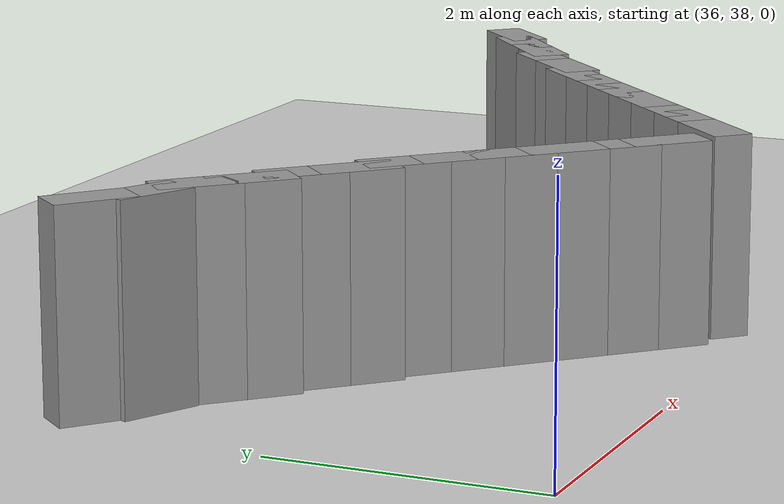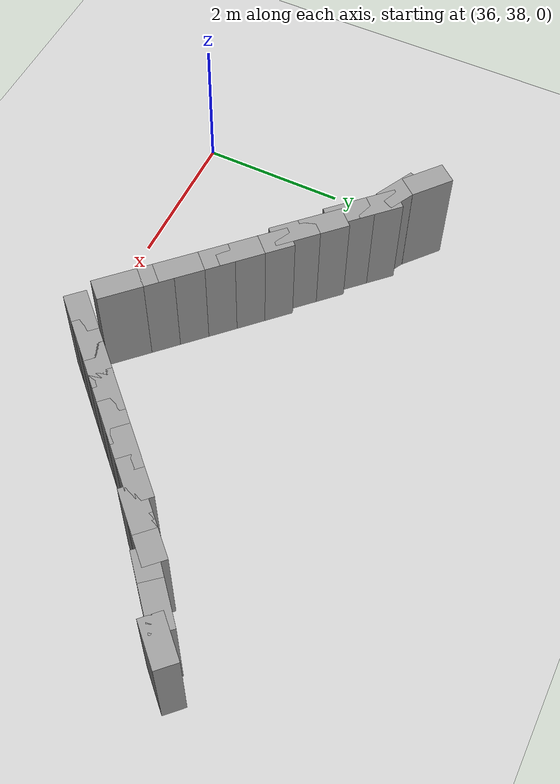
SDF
<sdf version="1.5">
 <world name="test_figure8">
  <include><uri>model://sun</uri></include>
  <include><uri>model://ground_plane</uri></include>
  <model name="curbL_372">
   <static>true</static>
   <pose>43.439 41.239 0.750 0 0 -2.356</pose>
   <link name="link">
    <collision name="collision"><geometry><box><size>0.600 0.300 1.500</size></box></geometry></collision>
    <visual name="visual">
     <geometry><box><size>0.600 0.300 1.500</size></box></geometry>
     <material><ambient>0.6 0.6 0.6 1</ambient><diffuse>0.6 0.6 0.6 1</diffuse></material>
    </visual>
   </link>
  </model>
  <model name="curbL_373">
   <static>true</static>
   <pose>43.114 41.041 0.750 0 0 -2.433</pose>
   <link name="link">
    <collision name="collision"><geometry><box><size>0.600 0.300 1.500</size></box></geometry></collision>
    <visual name="visual">
     <geometry><box><size>0.600 0.300 1.500</size></box></geometry>
     <material><ambient>0.6 0.6 0.6 1</ambient><diffuse>0.6 0.6 0.6 1</diffuse></material>
    </visual>
   </link>
  </model>
  <model name="curbL_374">
   <static>true</static>
   <pose>42.811 40.781 0.750 0 0 -2.433</pose>
   <link name="link">
    <collision name="collision"><geometry><box><size>0.600 0.300 1.500</size></box></geometry></collision>
    <visual name="visual">
     <geometry><box><size>0.600 0.300 1.500</size></box></geometry>
     <material><ambient>0.6 0.6 0.6 1</ambient><diffuse>0.6 0.6 0.6 1</diffuse></material>
    </visual>
   </link>
  </model>
  <model name="curbL_375">
   <static>true</static>
   <pose>42.484 40.584 0.750 0 0 -2.356</pose>
   <link name="link">
    <collision name="collision"><geometry><box><size>0.600 0.300 1.500</size></box></geometry></collision>
    <visual name="visual">
     <geometry><box><size>0.600 0.300 1.500</size></box></geometry>
     <material><ambient>0.6 0.6 0.6 1</ambient><diffuse>0.6 0.6 0.6 1</diffuse></material>
    </visual>
   </link>
  </model>
  <model name="curbL_376">
   <static>true</static>
   <pose>42.201 40.301 0.750 0 0 -2.356</pose>
   <link name="link">
    <collision name="collision"><geometry><box><size>0.600 0.300 1.500</size></box></geometry></collision>
    <visual name="visual">
     <geometry><box><size>0.600 0.300 1.500</size></box></geometry>
     <material><ambient>0.6 0.6 0.6 1</ambient><diffuse>0.6 0.6 0.6 1</diffuse></material>
    </visual>
   </link>
  </model>
  <model name="curbL_377">
   <static>true</static>
   <pose>41.889 40.089 0.750 0 0 -2.356</pose>
   <link name="link">
    <collision name="collision"><geometry><box><size>0.600 0.300 1.500</size></box></geometry></collision>
    <visual name="visual">
     <geometry><box><size>0.600 0.300 1.500</size></box></geometry>
     <material><ambient>0.6 0.6 0.6 1</ambient><diffuse>0.6 0.6 0.6 1</diffuse></material>
    </visual>
   </link>
  </model>
  <model name="curbL_378">
   <static>true</static>
   <pose>41.606 39.806 0.750 0 0 -2.356</pose>
   <link name="link">
    <collision name="collision"><geometry><box><size>0.600 0.300 1.500</size></box></geometry></collision>
    <visual name="visual">
     <geometry><box><size>0.600 0.300 1.500</size></box></geometry>
     <material><ambient>0.6 0.6 0.6 1</ambient><diffuse>0.6 0.6 0.6 1</diffuse></material>
    </visual>
   </link>
  </model>
  <model name="curbL_379">
   <static>true</static>
   <pose>41.324 39.524 0.750 0 0 -2.356</pose>
   <link name="link">
    <collision name="collision"><geometry><box><size>0.600 0.300 1.500</size></box></geometry></collision>
    <visual name="visual">
     <geometry><box><size>0.600 0.300 1.500</size></box></geometry>
     <material><ambient>0.6 0.6 0.6 1</ambient><diffuse>0.6 0.6 0.6 1</diffuse></material>
    </visual>
   </link>
  </model>
  <model name="curbL_380">
   <static>true</static>
   <pose>41.041 39.241 0.750 0 0 -2.356</pose>
   <link name="link">
    <collision name="collision"><geometry><box><size>0.600 0.300 1.500</size></box></geometry></collision>
    <visual name="visual">
     <geometry><box><size>0.600 0.300 1.500</size></box></geometry>
     <material><ambient>0.6 0.6 0.6 1</ambient><diffuse>0.6 0.6 0.6 1</diffuse></material>
    </visual>
   </link>
  </model>
  <model name="curbL_381">
   <static>true</static>
   <pose>40.758 38.958 0.750 0 0 -2.356</pose>
   <link name="link">
    <collision name="collision"><geometry><box><size>0.600 0.300 1.500</size></box></geometry></collision>
    <visual name="visual">
     <geometry><box><size>0.600 0.300 1.500</size></box></geometry>
     <material><ambient>0.6 0.6 0.6 1</ambient><diffuse>0.6 0.6 0.6 1</diffuse></material>
    </visual>
   </link>
  </model>
  <model name="curbL_382">
   <static>true</static>
   <pose>40.475 38.675 0.750 0 0 -2.356</pose>
   <link name="link">
    <collision name="collision"><geometry><box><size>0.600 0.300 1.500</size></box></geometry></collision>
    <visual name="visual">
     <geometry><box><size>0.600 0.300 1.500</size></box></geometry>
     <material><ambient>0.6 0.6 0.6 1</ambient><diffuse>0.6 0.6 0.6 1</diffuse></material>
    </visual>
   </link>
  </model>
  <model name="curbL_383">
   <static>true</static>
   <pose>40.192 38.392 0.750 0 0 -2.356</pose>
   <link name="link">
    <collision name="collision"><geometry><box><size>0.600 0.300 1.500</size></box></geometry></collision>
    <visual name="visual">
     <geometry><box><size>0.600 0.300 1.500</size></box></geometry>
     <material><ambient>0.6 0.6 0.6 1</ambient><diffuse>0.6 0.6 0.6 1</diffuse></material>
    </visual>
   </link>
  </model>
  <model name="curbL_385">
   <static>true</static>
   <pose>39.626 38.574 0.750 0 0 2.356</pose>
   <link name="link">
    <collision name="collision"><geometry><box><size>0.600 0.300 1.500</size></box></geometry></collision>
    <visual name="visual">
     <geometry><box><size>0.600 0.300 1.500</size></box></geometry>
     <material><ambient>0.6 0.6 0.6 1</ambient><diffuse>0.6 0.6 0.6 1</diffuse></material>
    </visual>
   </link>
  </model>
  <model name="curbL_386">
   <static>true</static>
   <pose>39.344 38.856 0.750 0 0 2.356</pose>
   <link name="link">
    <collision name="collision"><geometry><box><size>0.600 0.300 1.500</size></box></geometry></collision>
    <visual name="visual">
     <geometry><box><size>0.600 0.300 1.500</size></box></geometry>
     <material><ambient>0.6 0.6 0.6 1</ambient><diffuse>0.6 0.6 0.6 1</diffuse></material>
    </visual>
   </link>
  </model>
  <model name="curbL_387">
   <static>true</static>
   <pose>39.061 39.139 0.750 0 0 2.356</pose>
   <link name="link">
    <collision name="collision"><geometry><box><size>0.600 0.300 1.500</size></box></geometry></collision>
    <visual name="visual">
     <geometry><box><size>0.600 0.300 1.500</size></box></geometry>
     <material><ambient>0.6 0.6 0.6 1</ambient><diffuse>0.6 0.6 0.6 1</diffuse></material>
    </visual>
   </link>
  </model>
  <model name="curbL_388">
   <static>true</static>
   <pose>38.778 39.422 0.750 0 0 2.356</pose>
   <link name="link">
    <collision name="collision"><geometry><box><size>0.600 0.300 1.500</size></box></geometry></collision>
    <visual name="visual">
     <geometry><box><size>0.600 0.300 1.500</size></box></geometry>
     <material><ambient>0.6 0.6 0.6 1</ambient><diffuse>0.6 0.6 0.6 1</diffuse></material>
    </visual>
   </link>
  </model>
  <model name="curbL_389">
   <static>true</static>
   <pose>38.495 39.705 0.750 0 0 2.356</pose>
   <link name="link">
    <collision name="collision"><geometry><box><size>0.600 0.300 1.500</size></box></geometry></collision>
    <visual name="visual">
     <geometry><box><size>0.600 0.300 1.500</size></box></geometry>
     <material><ambient>0.6 0.6 0.6 1</ambient><diffuse>0.6 0.6 0.6 1</diffuse></material>
    </visual>
   </link>
  </model>
  <model name="curbL_390">
   <static>true</static>
   <pose>38.212 39.988 0.750 0 0 2.356</pose>
   <link name="link">
    <collision name="collision"><geometry><box><size>0.600 0.300 1.500</size></box></geometry></collision>
    <visual name="visual">
     <geometry><box><size>0.600 0.300 1.500</size></box></geometry>
     <material><ambient>0.6 0.6 0.6 1</ambient><diffuse>0.6 0.6 0.6 1</diffuse></material>
    </visual>
   </link>
  </model>
  <model name="curbL_391">
   <static>true</static>
   <pose>37.900 40.200 0.750 0 0 2.356</pose>
   <link name="link">
    <collision name="collision"><geometry><box><size>0.600 0.300 1.500</size></box></geometry></collision>
    <visual name="visual">
     <geometry><box><size>0.600 0.300 1.500</size></box></geometry>
     <material><ambient>0.6 0.6 0.6 1</ambient><diffuse>0.6 0.6 0.6 1</diffuse></material>
    </visual>
   </link>
  </model>
  <model name="curbL_392">
   <static>true</static>
   <pose>37.617 40.483 0.750 0 0 2.356</pose>
   <link name="link">
    <collision name="collision"><geometry><box><size>0.600 0.300 1.500</size></box></geometry></collision>
    <visual name="visual">
     <geometry><box><size>0.600 0.300 1.500</size></box></geometry>
     <material><ambient>0.6 0.6 0.6 1</ambient><diffuse>0.6 0.6 0.6 1</diffuse></material>
    </visual>
   </link>
  </model>
  <model name="curbL_393">
   <static>true</static>
   <pose>37.305 40.695 0.750 0 0 2.356</pose>
   <link name="link">
    <collision name="collision"><geometry><box><size>0.600 0.300 1.500</size></box></geometry></collision>
    <visual name="visual">
     <geometry><box><size>0.600 0.300 1.500</size></box></geometry>
     <material><ambient>0.6 0.6 0.6 1</ambient><diffuse>0.6 0.6 0.6 1</diffuse></material>
    </visual>
   </link>
  </model>
  <model name="curbL_394">
   <static>true</static>
   <pose>37.022 40.978 0.750 0 0 2.356</pose>
   <link name="link">
    <collision name="collision"><geometry><box><size>0.600 0.300 1.500</size></box></geometry></collision>
    <visual name="visual">
     <geometry><box><size>0.600 0.300 1.500</size></box></geometry>
     <material><ambient>0.6 0.6 0.6 1</ambient><diffuse>0.6 0.6 0.6 1</diffuse></material>
    </visual>
   </link>
  </model>
  <model name="curbL_395">
   <static>true</static>
   <pose>36.670 41.165 0.750 0 0 2.678</pose>
   <link name="link">
    <collision name="collision"><geometry><box><size>0.600 0.300 1.500</size></box></geometry></collision>
    <visual name="visual">
     <geometry><box><size>0.600 0.300 1.500</size></box></geometry>
     <material><ambient>0.6 0.6 0.6 1</ambient><diffuse>0.6 0.6 0.6 1</diffuse></material>
    </visual>
   </link>
  </model>
  <model name="curbL_396">
   <static>true</static>
   <pose>36.353 41.406 0.750 0 0 2.447</pose>
   <link name="link">
    <collision name="collision"><geometry><box><size>0.600 0.300 1.500</size></box></geometry></collision>
    <visual name="visual">
     <geometry><box><size>0.600 0.300 1.500</size></box></geometry>
     <material><ambient>0.6 0.6 0.6 1</ambient><diffuse>0.6 0.6 0.6 1</diffuse></material>
    </visual>
   </link>
  </model>
 </world>
</sdf>
